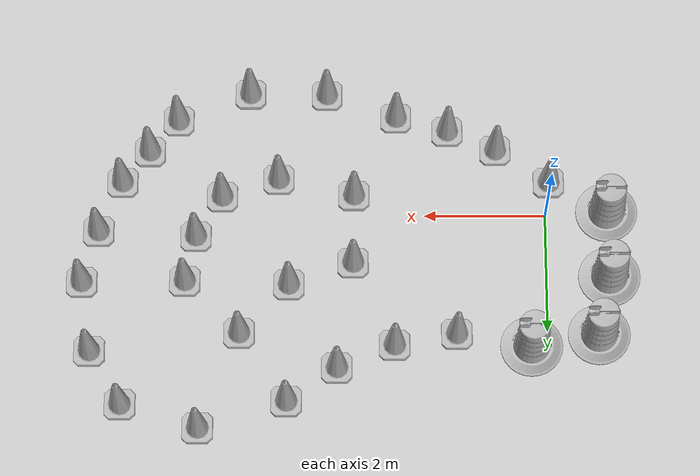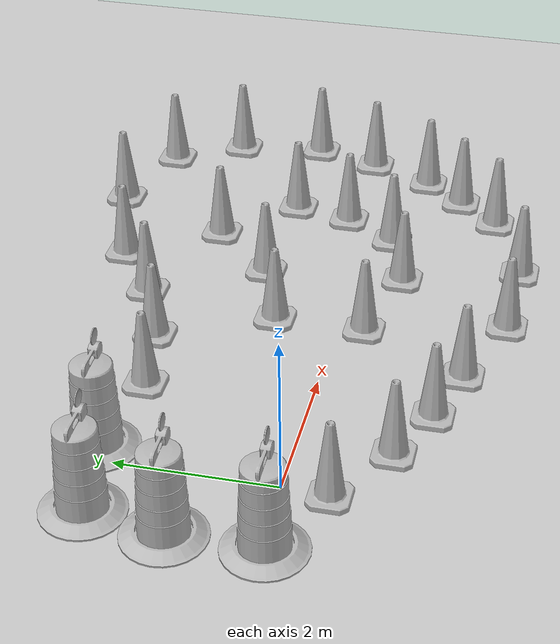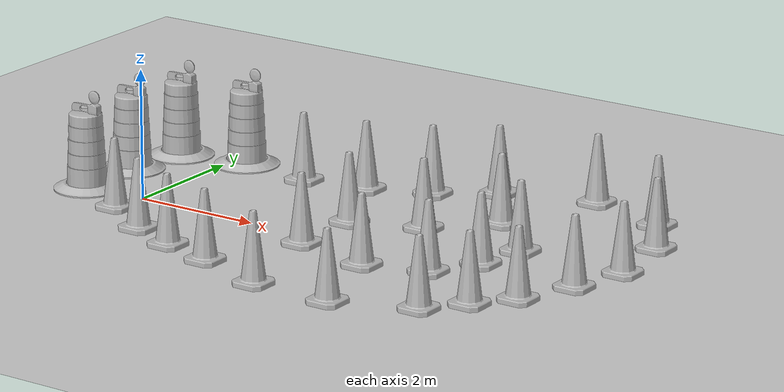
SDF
<sdf version="1.7">
 <world name="default">
  <light name="sun" type="directional">
   <pose>0 0 10 0 -0 0</pose>
   <diffuse>0.8 0.8 0.8 1</diffuse>
   <specular>0.2 0.2 0.2 1</specular>
   <attenuation>
    <range>1000</range>
    <constant>0.9</constant>
    <linear>0.01</linear>
    <quadratic>0.001</quadratic>
   </attenuation>
   <direction>-0.5 0.1 -0.9</direction>
   <spot><inner_angle>0</inner_angle><outer_angle>0</outer_angle><falloff>0</falloff></spot>
  </light>
  <model name="ground_plane">
   <static>1</static>
   <link name="link">
    <collision name="collision">
     <geometry><plane><normal>0 0 1</normal><size>100 100</size></plane></geometry>
     <surface>
      <contact><collide_bitmask>65535</collide_bitmask></contact>
      <friction><ode><mu>100</mu><mu2>50</mu2></ode></friction>
     </surface>
    </collision>
    <visual name="visual">
     <cast_shadows>0</cast_shadows>
     <geometry><plane><normal>0 0 1</normal><size>100 100</size></plane></geometry>
     <material>
      <script><uri>file://media/materials/scripts/gazebo.material</uri><name>Gazebo/Grey</name></script>
     </material>
    </visual>
   </link>
  </model>
  <gravity>0 0 -9.8</gravity>
  <magnetic_field>6e-06 2.3e-05 -4.2e-05</magnetic_field>
  <atmosphere type="adiabatic"/>
  <physics type="ode">
   <max_step_size>0.001</max_step_size>
   <real_time_factor>1</real_time_factor>
   <real_time_update_rate>1000</real_time_update_rate>
  </physics>
  <scene><ambient>0.4 0.4 0.4 1</ambient><background>0.7 0.7 0.7 1</background><shadows>1</shadows></scene>
  <audio><device>default</device></audio>
  <spherical_coordinates>
   <surface_model>EARTH_WGS84</surface_model>
   <latitude_deg>0</latitude_deg>
   <longitude_deg>0</longitude_deg>
   <elevation>0</elevation>
   <heading_deg>0</heading_deg>
  </spherical_coordinates>
  <model name="Construction Cone">
   <link name="link">
    <collision name="collision">
     <geometry>
      <mesh><scale>10 10 10</scale><uri>model://construction_cone/meshes/construction_cone.dae</uri></mesh>
     </geometry>
    </collision>
    <visual name="visual">
     <geometry>
      <mesh><scale>10 10 10</scale><uri>model://construction_cone/meshes/construction_cone.dae</uri></mesh>
     </geometry>
    </visual>
    <inertial>
     <inertia><ixx>1</ixx><ixy>0</ixy><ixz>0</ixz><iyy>1</iyy><iyz>0</iyz><izz>1</izz></inertia>
     <mass>1</mass>
    </inertial>
   </link>
   <pose>3.17327 0.824734 -1e-05 -0 -0 -0</pose>
  </model>
  <model name="Construction Cone_0">
   <link name="link">
    <collision name="collision">
     <geometry>
      <mesh><scale>10 10 10</scale><uri>model://construction_cone/meshes/construction_cone.dae</uri></mesh>
     </geometry>
    </collision>
    <visual name="visual">
     <geometry>
      <mesh><scale>10 10 10</scale><uri>model://construction_cone/meshes/construction_cone.dae</uri></mesh>
     </geometry>
    </visual>
    <inertial>
     <inertia><ixx>1</ixx><ixy>0</ixy><ixz>0</ixz><iyy>1</iyy><iyz>0</iyz><izz>1</izz></inertia>
     <mass>1</mass>
    </inertial>
   </link>
   <pose>3.1601 -0.350617 -0 0 -0 0</pose>
  </model>
  <model name="Construction Barrel">
   <link name="link">
    <inertial>
     <pose>0 0 0.4 0 -0 0</pose>
     <mass>500</mass>
     <inertia><ixx>51.2096</ixx><iyy>51.2096</iyy><izz>25</izz><ixy>0</ixy><ixz>0</ixz><iyz>0</iyz></inertia>
    </inertial>
    <collision name="collision">
     <geometry><mesh><uri>model://construction_barrel/meshes/construction_barrel.dae</uri></mesh></geometry>
    </collision>
    <visual name="visual">
     <geometry><mesh><uri>model://construction_barrel/meshes/construction_barrel.dae</uri></mesh></geometry>
    </visual>
   </link>
   <pose>0.264781 2.25436 -3e-06 -6e-06 -5e-06 -3.7e-05</pose>
  </model>
  <model name="Construction Cone_1">
   <link name="link">
    <collision name="collision">
     <geometry>
      <mesh><scale>10 10 10</scale><uri>model://construction_cone/meshes/construction_cone.dae</uri></mesh>
     </geometry>
    </collision>
    <visual name="visual">
     <geometry>
      <mesh><scale>10 10 10</scale><uri>model://construction_cone/meshes/construction_cone.dae</uri></mesh>
     </geometry>
    </visual>
    <inertial>
     <inertia><ixx>1</ixx><ixy>0</ixy><ixz>0</ixz><iyy>1</iyy><iyz>0</iyz><izz>1</izz></inertia>
     <mass>1</mass>
    </inertial>
   </link>
   <pose>2.46056 -1.7289 -0 0 -0 0</pose>
  </model>
  <model name="Construction Cone_2">
   <link name="link">
    <collision name="collision">
     <geometry>
      <mesh><scale>10 10 10</scale><uri>model://construction_cone/meshes/construction_cone.dae</uri></mesh>
     </geometry>
    </collision>
    <visual name="visual">
     <geometry>
      <mesh><scale>10 10 10</scale><uri>model://construction_cone/meshes/construction_cone.dae</uri></mesh>
     </geometry>
    </visual>
    <inertial>
     <inertia><ixx>1</ixx><ixy>0</ixy><ixz>0</ixz><iyy>1</iyy><iyz>0</iyz><izz>1</izz></inertia>
     <mass>1</mass>
    </inertial>
   </link>
   <pose>-0.06339 -0.579262 -0 0 -1e-06 0</pose>
  </model>
  <model name="Construction Cone_3">
   <link name="link">
    <collision name="collision">
     <geometry>
      <mesh><scale>10 10 10</scale><uri>model://construction_cone/meshes/construction_cone.dae</uri></mesh>
     </geometry>
    </collision>
    <visual name="visual">
     <geometry>
      <mesh><scale>10 10 10</scale><uri>model://construction_cone/meshes/construction_cone.dae</uri></mesh>
     </geometry>
    </visual>
    <inertial>
     <inertia><ixx>1</ixx><ixy>0</ixy><ixz>0</ixz><iyy>1</iyy><iyz>0</iyz><izz>1</izz></inertia>
     <mass>1</mass>
    </inertial>
   </link>
   <pose>0.814283 -1.14823 -0 0 -1e-06 0</pose>
  </model>
  <model name="Construction Cone_4">
   <link name="link">
    <collision name="collision">
     <geometry>
      <mesh><scale>10 10 10</scale><uri>model://construction_cone/meshes/construction_cone.dae</uri></mesh>
     </geometry>
    </collision>
    <visual name="visual">
     <geometry>
      <mesh><scale>10 10 10</scale><uri>model://construction_cone/meshes/construction_cone.dae</uri></mesh>
     </geometry>
    </visual>
    <inertial>
     <inertia><ixx>1</ixx><ixy>0</ixy><ixz>0</ixz><iyy>1</iyy><iyz>0</iyz><izz>1</izz></inertia>
     <mass>1</mass>
    </inertial>
   </link>
   <pose>1.60879 -1.48635 -0 0 -0 0</pose>
  </model>
  <model name="Construction Barrel_0">
   <link name="link">
    <inertial>
     <pose>0 0 0.4 0 -0 0</pose>
     <mass>500</mass>
     <inertia><ixx>51.2096</ixx><iyy>51.2096</iyy><izz>25</izz><ixy>0</ixy><ixz>0</ixz><iyz>0</iyz></inertia>
    </inertial>
    <collision name="collision">
     <geometry><mesh><uri>model://construction_barrel/meshes/construction_barrel.dae</uri></mesh></geometry>
    </collision>
    <visual name="visual">
     <geometry><mesh><uri>model://construction_barrel/meshes/construction_barrel.dae</uri></mesh></geometry>
    </visual>
   </link>
   <pose>-1.01154 -0.065547 -3e-06 -6e-06 -5e-06 -3.1e-05</pose>
  </model>
  <model name="Construction Barrel_1">
   <link name="link">
    <inertial>
     <pose>0 0 0.4 0 -0 0</pose>
     <mass>500</mass>
     <inertia><ixx>51.2096</ixx><iyy>51.2096</iyy><izz>25</izz><ixy>0</ixy><ixz>0</ixz><iyz>0</iyz></inertia>
    </inertial>
    <collision name="collision">
     <geometry><mesh><uri>model://construction_barrel/meshes/construction_barrel.dae</uri></mesh></geometry>
    </collision>
    <visual name="visual">
     <geometry><mesh><uri>model://construction_barrel/meshes/construction_barrel.dae</uri></mesh></geometry>
    </visual>
   </link>
   <pose>-1.03272 1.06141 -0 0 -0 0.007183</pose>
  </model>
  <model name="Construction Barrel_2">
   <link name="link">
    <inertial>
     <pose>0 0 0.4 0 -0 0</pose>
     <mass>500</mass>
     <inertia><ixx>51.2096</ixx><iyy>51.2096</iyy><izz>25</izz><ixy>0</ixy><ixz>0</ixz><iyz>0</iyz></inertia>
    </inertial>
    <collision name="collision">
     <geometry><mesh><uri>model://construction_barrel/meshes/construction_barrel.dae</uri></mesh></geometry>
    </collision>
    <visual name="visual">
     <geometry><mesh><uri>model://construction_barrel/meshes/construction_barrel.dae</uri></mesh></geometry>
    </visual>
   </link>
   <pose>-0.841672 2.05712 -0 1e-06 7e-06 -0.012039</pose>
  </model>
  <model name="Construction Cone_5">
   <link name="link">
    <collision name="collision">
     <geometry>
      <mesh><scale>10 10 10</scale><uri>model://construction_cone/meshes/construction_cone.dae</uri></mesh>
     </geometry>
    </collision>
    <visual name="visual">
     <geometry>
      <mesh><scale>10 10 10</scale><uri>model://construction_cone/meshes/construction_cone.dae</uri></mesh>
     </geometry>
    </visual>
    <inertial>
     <inertia><ixx>1</ixx><ixy>0</ixy><ixz>0</ixz><iyy>1</iyy><iyz>0</iyz><izz>1</izz></inertia>
     <mass>1</mass>
    </inertial>
   </link>
   <pose>1.48095 2.05478 -0 0 -0 0</pose>
  </model>
  <model name="Construction Cone_6">
   <link name="link">
    <collision name="collision">
     <geometry>
      <mesh><scale>10 10 10</scale><uri>model://construction_cone/meshes/construction_cone.dae</uri></mesh>
     </geometry>
    </collision>
    <visual name="visual">
     <geometry>
      <mesh><scale>10 10 10</scale><uri>model://construction_cone/meshes/construction_cone.dae</uri></mesh>
     </geometry>
    </visual>
    <inertial>
     <inertia><ixx>1</ixx><ixy>0</ixy><ixz>0</ixz><iyy>1</iyy><iyz>0</iyz><izz>1</izz></inertia>
     <mass>1</mass>
    </inertial>
   </link>
   <pose>2.49828 2.24364 -0 0 -1e-06 0</pose>
  </model>
  <model name="Construction Cone_7">
   <link name="link">
    <collision name="collision">
     <geometry>
      <mesh><scale>10 10 10</scale><uri>model://construction_cone/meshes/construction_cone.dae</uri></mesh>
     </geometry>
    </collision>
    <visual name="visual">
     <geometry>
      <mesh><scale>10 10 10</scale><uri>model://construction_cone/meshes/construction_cone.dae</uri></mesh>
     </geometry>
    </visual>
    <inertial>
     <inertia><ixx>1</ixx><ixy>0</ixy><ixz>0</ixz><iyy>1</iyy><iyz>0</iyz><izz>1</izz></inertia>
     <mass>1</mass>
    </inertial>
   </link>
   <pose>4.22694 1.20192 -0 0 -1e-06 0</pose>
  </model>
  <model name="Construction Cone_8">
   <link name="link">
    <collision name="collision">
     <geometry>
      <mesh><scale>10 10 10</scale><uri>model://construction_cone/meshes/construction_cone.dae</uri></mesh>
     </geometry>
    </collision>
    <visual name="visual">
     <geometry>
      <mesh><scale>10 10 10</scale><uri>model://construction_cone/meshes/construction_cone.dae</uri></mesh>
     </geometry>
    </visual>
    <inertial>
     <inertia><ixx>1</ixx><ixy>0</ixy><ixz>0</ixz><iyy>1</iyy><iyz>0</iyz><izz>1</izz></inertia>
     <mass>1</mass>
    </inertial>
   </link>
   <pose>3.43757 2.62853 -1e-06 1e-06 -2e-06 -0</pose>
  </model>
  <model name="Construction Cone_9">
   <link name="link">
    <collision name="collision">
     <geometry>
      <mesh><scale>10 10 10</scale><uri>model://construction_cone/meshes/construction_cone.dae</uri></mesh>
     </geometry>
    </collision>
    <visual name="visual">
     <geometry>
      <mesh><scale>10 10 10</scale><uri>model://construction_cone/meshes/construction_cone.dae</uri></mesh>
     </geometry>
    </visual>
    <inertial>
     <inertia><ixx>1</ixx><ixy>0</ixy><ixz>0</ixz><iyy>1</iyy><iyz>0</iyz><izz>1</izz></inertia>
     <mass>1</mass>
    </inertial>
   </link>
   <pose>4.25842 3.19324 -0 0 -1e-06 0</pose>
  </model>
  <model name="Construction Cone_10">
   <link name="link">
    <collision name="collision">
     <geometry>
      <mesh><scale>10 10 10</scale><uri>model://construction_cone/meshes/construction_cone.dae</uri></mesh>
     </geometry>
    </collision>
    <visual name="visual">
     <geometry>
      <mesh><scale>10 10 10</scale><uri>model://construction_cone/meshes/construction_cone.dae</uri></mesh>
     </geometry>
    </visual>
    <inertial>
     <inertia><ixx>1</ixx><ixy>0</ixy><ixz>0</ixz><iyy>1</iyy><iyz>0</iyz><izz>1</izz></inertia>
     <mass>1</mass>
    </inertial>
   </link>
   <pose>5.03358 2.03788 -0 0 -0 0</pose>
  </model>
  <model name="Construction Cone_11">
   <link name="link">
    <collision name="collision">
     <geometry>
      <mesh><scale>10 10 10</scale><uri>model://construction_cone/meshes/construction_cone.dae</uri></mesh>
     </geometry>
    </collision>
    <visual name="visual">
     <geometry>
      <mesh><scale>10 10 10</scale><uri>model://construction_cone/meshes/construction_cone.dae</uri></mesh>
     </geometry>
    </visual>
    <inertial>
     <inertia><ixx>1</ixx><ixy>0</ixy><ixz>0</ixz><iyy>1</iyy><iyz>0</iyz><izz>1</izz></inertia>
     <mass>1</mass>
    </inertial>
   </link>
   <pose>5.93326 1.14059 -0 0 -0 0</pose>
  </model>
  <model name="Construction Cone_12">
   <link name="link">
    <collision name="collision">
     <geometry>
      <mesh><scale>10 10 10</scale><uri>model://construction_cone/meshes/construction_cone.dae</uri></mesh>
     </geometry>
    </collision>
    <visual name="visual">
     <geometry>
      <mesh><scale>10 10 10</scale><uri>model://construction_cone/meshes/construction_cone.dae</uri></mesh>
     </geometry>
    </visual>
    <inertial>
     <inertia><ixx>1</ixx><ixy>0</ixy><ixz>0</ixz><iyy>1</iyy><iyz>0</iyz><izz>1</izz></inertia>
     <mass>1</mass>
    </inertial>
   </link>
   <pose>5.33504 -0.330417 -0 0 -0 0</pose>
  </model>
  <model name="Construction Cone_13">
   <link name="link">
    <collision name="collision">
     <geometry>
      <mesh><scale>10 10 10</scale><uri>model://construction_cone/meshes/construction_cone.dae</uri></mesh>
     </geometry>
    </collision>
    <visual name="visual">
     <geometry>
      <mesh><scale>10 10 10</scale><uri>model://construction_cone/meshes/construction_cone.dae</uri></mesh>
     </geometry>
    </visual>
    <inertial>
     <inertia><ixx>1</ixx><ixy>0</ixy><ixz>0</ixz><iyy>1</iyy><iyz>0</iyz><izz>1</izz></inertia>
     <mass>1</mass>
    </inertial>
   </link>
   <pose>4.40334 -0.635161 -0 0 -1e-06 0</pose>
  </model>
  <model name="Construction Cone_14">
   <link name="link">
    <collision name="collision">
     <geometry>
      <mesh><scale>10 10 10</scale><uri>model://construction_cone/meshes/construction_cone.dae</uri></mesh>
     </geometry>
    </collision>
    <visual name="visual">
     <geometry>
      <mesh><scale>10 10 10</scale><uri>model://construction_cone/meshes/construction_cone.dae</uri></mesh>
     </geometry>
    </visual>
    <inertial>
     <inertia><ixx>1</ixx><ixy>0</ixy><ixz>0</ixz><iyy>1</iyy><iyz>0</iyz><izz>1</izz></inertia>
     <mass>1</mass>
    </inertial>
   </link>
   <pose>3.61042 -2.13551 -0 -0 -0 -0</pose>
  </model>
  <model name="Construction Cone_15">
   <link name="link">
    <collision name="collision">
     <geometry>
      <mesh><scale>10 10 10</scale><uri>model://construction_cone/meshes/construction_cone.dae</uri></mesh>
     </geometry>
    </collision>
    <visual name="visual">
     <geometry>
      <mesh><scale>10 10 10</scale><uri>model://construction_cone/meshes/construction_cone.dae</uri></mesh>
     </geometry>
    </visual>
    <inertial>
     <inertia><ixx>1</ixx><ixy>0</ixy><ixz>0</ixz><iyy>1</iyy><iyz>0</iyz><izz>1</izz></inertia>
     <mass>1</mass>
    </inertial>
   </link>
   <pose>4.88382 -2.15578 -0 0 -1e-06 0</pose>
  </model>
  <model name="Construction Cone_16">
   <link name="link">
    <collision name="collision">
     <geometry>
      <mesh><scale>10 10 10</scale><uri>model://construction_cone/meshes/construction_cone.dae</uri></mesh>
     </geometry>
    </collision>
    <visual name="visual">
     <geometry>
      <mesh><scale>10 10 10</scale><uri>model://construction_cone/meshes/construction_cone.dae</uri></mesh>
     </geometry>
    </visual>
    <inertial>
     <inertia><ixx>1</ixx><ixy>0</ixy><ixz>0</ixz><iyy>1</iyy><iyz>0</iyz><izz>1</izz></inertia>
     <mass>1</mass>
    </inertial>
   </link>
   <pose>6.07865 -1.67911 -0 0 -0 0</pose>
  </model>
  <model name="Construction Cone_17">
   <link name="link">
    <collision name="collision">
     <geometry>
      <mesh><scale>10 10 10</scale><uri>model://construction_cone/meshes/construction_cone.dae</uri></mesh>
     </geometry>
    </collision>
    <visual name="visual">
     <geometry>
      <mesh><scale>10 10 10</scale><uri>model://construction_cone/meshes/construction_cone.dae</uri></mesh>
     </geometry>
    </visual>
    <inertial>
     <inertia><ixx>1</ixx><ixy>0</ixy><ixz>0</ixz><iyy>1</iyy><iyz>0</iyz><izz>1</izz></inertia>
     <mass>1</mass>
    </inertial>
   </link>
   <pose>5.7623 0.364711 -0 0 -1e-06 0</pose>
  </model>
  <model name="Construction Cone_18">
   <link name="link">
    <collision name="collision">
     <geometry>
      <mesh><scale>10 10 10</scale><uri>model://construction_cone/meshes/construction_cone.dae</uri></mesh>
     </geometry>
    </collision>
    <visual name="visual">
     <geometry>
      <mesh><scale>10 10 10</scale><uri>model://construction_cone/meshes/construction_cone.dae</uri></mesh>
     </geometry>
    </visual>
    <inertial>
     <inertia><ixx>1</ixx><ixy>0</ixy><ixz>0</ixz><iyy>1</iyy><iyz>0</iyz><izz>1</izz></inertia>
     <mass>1</mass>
    </inertial>
   </link>
   <pose>5.68838 3.64524 -0 0 -1e-06 0</pose>
  </model>
  <model name="Construction Cone_19">
   <link name="link">
    <collision name="collision">
     <geometry>
      <mesh><scale>10 10 10</scale><uri>model://construction_cone/meshes/construction_cone.dae</uri></mesh>
     </geometry>
    </collision>
    <visual name="visual">
     <geometry>
      <mesh><scale>10 10 10</scale><uri>model://construction_cone/meshes/construction_cone.dae</uri></mesh>
     </geometry>
    </visual>
    <inertial>
     <inertia><ixx>1</ixx><ixy>0</ixy><ixz>0</ixz><iyy>1</iyy><iyz>0</iyz><izz>1</izz></inertia>
     <mass>1</mass>
    </inertial>
   </link>
   <pose>6.95112 3.2479 -0 0 -0 0</pose>
  </model>
  <model name="Construction Cone_20">
   <link name="link">
    <collision name="collision">
     <geometry>
      <mesh><scale>10 10 10</scale><uri>model://construction_cone/meshes/construction_cone.dae</uri></mesh>
     </geometry>
    </collision>
    <visual name="visual">
     <geometry>
      <mesh><scale>10 10 10</scale><uri>model://construction_cone/meshes/construction_cone.dae</uri></mesh>
     </geometry>
    </visual>
    <inertial>
     <inertia><ixx>1</ixx><ixy>0</ixy><ixz>0</ixz><iyy>1</iyy><iyz>0</iyz><izz>1</izz></inertia>
     <mass>1</mass>
    </inertial>
   </link>
   <pose>7.47015 2.34308 -0 0 -1e-06 0</pose>
  </model>
  <model name="Construction Cone_21">
   <link name="link">
    <collision name="collision">
     <geometry>
      <mesh><scale>10 10 10</scale><uri>model://construction_cone/meshes/construction_cone.dae</uri></mesh>
     </geometry>
    </collision>
    <visual name="visual">
     <geometry>
      <mesh><scale>10 10 10</scale><uri>model://construction_cone/meshes/construction_cone.dae</uri></mesh>
     </geometry>
    </visual>
    <inertial>
     <inertia><ixx>1</ixx><ixy>0</ixy><ixz>0</ixz><iyy>1</iyy><iyz>0</iyz><izz>1</izz></inertia>
     <mass>1</mass>
    </inertial>
   </link>
   <pose>7.62387 1.15865 -0 0 -1e-06 0</pose>
  </model>
  <model name="Construction Cone_22">
   <link name="link">
    <collision name="collision">
     <geometry>
      <mesh><scale>10 10 10</scale><uri>model://construction_cone/meshes/construction_cone.dae</uri></mesh>
     </geometry>
    </collision>
    <visual name="visual">
     <geometry>
      <mesh><scale>10 10 10</scale><uri>model://construction_cone/meshes/construction_cone.dae</uri></mesh>
     </geometry>
    </visual>
    <inertial>
     <inertia><ixx>1</ixx><ixy>0</ixy><ixz>0</ixz><iyy>1</iyy><iyz>0</iyz><izz>1</izz></inertia>
     <mass>1</mass>
    </inertial>
   </link>
   <pose>7.3667 0.277847 -0 0 -1e-06 0</pose>
  </model>
  <model name="Construction Cone_23">
   <link name="link">
    <collision name="collision">
     <geometry>
      <mesh><scale>10 10 10</scale><uri>model://construction_cone/meshes/construction_cone.dae</uri></mesh>
     </geometry>
    </collision>
    <visual name="visual">
     <geometry>
      <mesh><scale>10 10 10</scale><uri>model://construction_cone/meshes/construction_cone.dae</uri></mesh>
     </geometry>
    </visual>
    <inertial>
     <inertia><ixx>1</ixx><ixy>0</ixy><ixz>0</ixz><iyy>1</iyy><iyz>0</iyz><izz>1</izz></inertia>
     <mass>1</mass>
    </inertial>
   </link>
   <pose>6.99045 -0.583717 -0 0 -0 0</pose>
  </model>
  <model name="Construction Cone_24">
   <link name="link">
    <collision name="collision">
     <geometry>
      <mesh><scale>10 10 10</scale><uri>model://construction_cone/meshes/construction_cone.dae</uri></mesh>
     </geometry>
    </collision>
    <visual name="visual">
     <geometry>
      <mesh><scale>10 10 10</scale><uri>model://construction_cone/meshes/construction_cone.dae</uri></mesh>
     </geometry>
    </visual>
    <inertial>
     <inertia><ixx>1</ixx><ixy>0</ixy><ixz>0</ixz><iyy>1</iyy><iyz>0</iyz><izz>1</izz></inertia>
     <mass>1</mass>
    </inertial>
   </link>
   <pose>6.54598 -1.12884 -0 0 -1e-06 0</pose>
  </model>
 </world>
</sdf>
